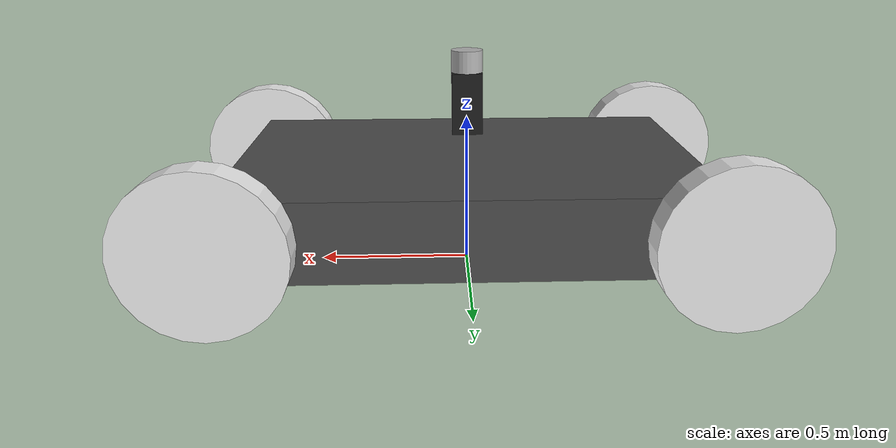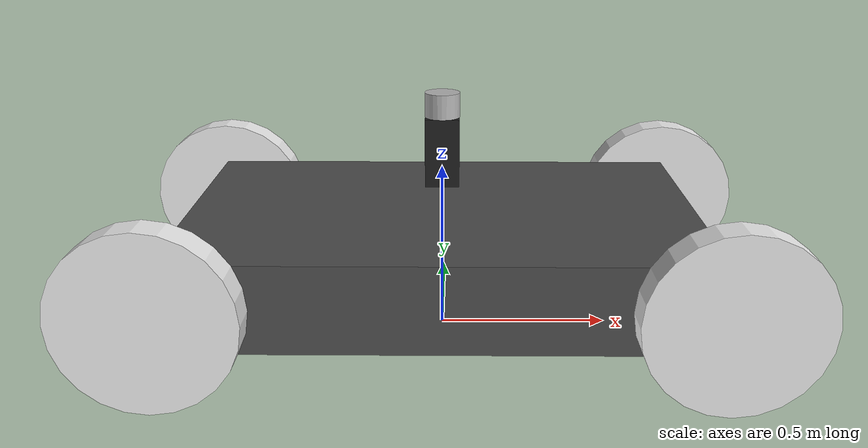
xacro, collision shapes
<?xml version='1.0'?>

<robot name="feldschwarm_robot" xmlns:xacro="http://www.ros.org/wiki/xacro">

  <xacro:include filename="$(find feldschwarm_robot_devel)/urdf/feldschwarm_robot.gazebo.xacro" />

  <xacro:property name="scale" value="1.0" />

  <xacro:property name="robot_width" value="${scale * 1}" />
  <xacro:property name="robot_length" value="${scale * 1.5}" />
  <xacro:property name="robot_height" value="${scale * 0.25}" />
  <xacro:property name="robot_mass" value="${scale * 20}" />

  <xacro:property name="base_x_offset" value="0" />

  <xacro:property name="height_2" value="${robot_height * robot_height}" />
  <xacro:property name="width_2" value="${robot_width * robot_width}" />
  <xacro:property name="length_2" value="${robot_length * robot_length}" />
  <xacro:property name="robot_inertia_xx" value="${robot_mass/12.0 * (height_2 + width_2)}" />
  <xacro:property name="robot_inertia_yy" value="${robot_mass/12.0 * (height_2 + length_2)}" />
  <xacro:property name="robot_inertia_zz" value="${robot_mass/12.0 * (width_2 + length_2)}" />
  <xacro:property name="robot_i_x_pos" value="${base_x_offset}" />

  <xacro:property name="robot_frame_width" value="${robot_width - 2.1 * wheel_length}" />
  <xacro:property name="robot_frame_length" value="${robot_length*1.2}" />
  <xacro:property name="robot_frame_height" value="${robot_height/4.0}" />

  <xacro:property name="wheel_length" value="${scale * 0.1}" />
  <xacro:property name="wheel_radius" value="${scale * 0.25}" />
  <xacro:property name="wheel_mass" value="${scale * 1}" />
  <xacro:property name="wheel_inertia" value="${scale * 1e-3}" />
  <xacro:property name="wheel_x_offset" value="0.75" />
  <xacro:property name="wheel_y_offset" value="0.55" />

  <xacro:property name="laser_width" value="0.1" />
  <xacro:property name="laser_length" value="0.1" />
  <xacro:property name="laser_height" value="0.1" />
  <xacro:property name="laser_x_offset" value="${base_x_offset}" />
  <xacro:property name="laser_z_offset" value="${hardware_height + 0.025}" />

  <xacro:property name="wheel_kp" value="1000000.0" />
  <xacro:property name="wheel_kd" value="100.0" />
  <xacro:property name="wheel_mu1" value="0.8" />
  <xacro:property name="wheel_mu2" value="0.8" />
  <xacro:property name="wheel_slip1" value="0.5" />
  <xacro:property name="wheel_slip2" value="0" />

  <link name="robot_footprint"></link>

  <joint name="robot_footprint_joint" type="fixed">
    <origin xyz="0 0 ${wheel_radius}" rpy="0 0 0" />
    <parent link="robot_footprint" />
    <child link="chassis" />
  </joint>

  <link name='chassis'>
    <inertial>
      <mass value="${robot_mass}"/>
      <origin xyz="${robot_i_x_pos} 0 ${robot_i_x_pos}" rpy=" 0 0 0"/>
      <inertia
          ixx="${robot_inertia_xx}" ixy="0" ixz="0"
          iyy="${robot_inertia_yy}" iyz="0"
          izz="${robot_inertia_zz}" />
    </inertial>

    <collision>
      <origin xyz="${base_x_offset} 0 0" rpy=" 0 0 0"/>
      <geometry>
        <box size="${robot_length} ${robot_width} ${robot_height}"/>
      </geometry>
    </collision>
    <visual>
      <origin xyz="${base_x_offset} 0 0" rpy=" 0 0 0"/>
      <geometry>
        <box size="${robot_length} ${robot_width} ${robot_height}"/>
      </geometry>
    </visual>
  </link>

  <!-- left back wheel -->
  <joint type="continuous" name="left_back_wheel_hinge">
    <origin xyz="-${wheel_x_offset} ${wheel_y_offset} 0" rpy="0 0 0"/>
    <child link="left_back_wheel"/>
    <parent link="chassis"/>
    <axis xyz="0 1 0" rpy="0 0 0"/>
    <limit effort="10000" velocity="1000"/>
    <joint_properties damping="1.0" friction="1.0"/>
  </joint>

  <link name="left_back_wheel">
    <inertial>
      <mass value="${wheel_mass}"/>
      <origin xyz="0.0 0 0" rpy=" 0 1.5707 1.5707"/>
      <inertia
        ixx="${wheel_inertia}" ixy="0" ixz="0"
        iyy="${wheel_inertia}" iyz="0"
        izz="${wheel_inertia}" />
    </inertial>
    <collision name="left_back_wheel_collision">
      <origin xyz="0 0 0" rpy=" 0 1.5707 1.5707"/>
      <geometry>
        <cylinder length="${wheel_length}" radius="${wheel_radius}"/>
      </geometry>
      <surface>
        <friction>
          <fdir1>1 0 0</fdir1>
          <kp>${wheel_kp}</kp>
          <kd>${wheel_kd}</kd>
          <mu>${wheel_mu1}</mu>
          <mu2>${wheel_mu2}</mu2>
          <slip1>${wheel_slip1}</slip1>
          <slip2>${wheel_slip2}</slip2>
        </friction>
      </surface>
    </collision>
    <visual name="left_back_wheel_visual">
      <origin xyz="0 0 0" rpy=" 0 1.5707 1.5707"/>
      <geometry>
        <cylinder length="${wheel_length}" radius="${wheel_radius}"/>
      </geometry>
    </visual>
  </link>

  <!-- right back wheel -->
  <joint type="continuous" name="right_back_wheel_hinge">
    <origin xyz="-${wheel_x_offset} -${wheel_y_offset} 0" rpy="0 0 0"/>
    <child link="right_back_wheel"/>
    <parent link="chassis"/>
    <axis xyz="0 1 0" rpy="0 0 0"/>
    <limit effort="10000" velocity="1000"/>
    <joint_properties damping="1.0" friction="1.0"/>
  </joint>

  <link name="right_back_wheel">
    <inertial>
      <mass value="${wheel_mass}"/>
      <origin xyz="0.0 0 0" rpy=" 0 1.5707 1.5707"/>
      <inertia
          ixx="${wheel_inertia}" ixy="0" ixz="0"
          iyy="${wheel_inertia}" iyz="0"
          izz="${wheel_inertia}" />
    </inertial>
    <collision name="right_back_wheel_collision">
      <origin xyz="0 0 0" rpy=" 0 1.5707 1.5707"/>
      <geometry>
        <cylinder length="${wheel_length}" radius="${wheel_radius}"/>
      </geometry>
      <surface>
        <friction>
          <fdir1>1 0 0</fdir1>
          <kp>${wheel_kp}</kp>
          <kd>${wheel_kd}</kd>
          <mu>${wheel_mu1}</mu>
          <mu2>${wheel_mu2}</mu2>
          <slip1>${wheel_slip1}</slip1>
          <slip2>${wheel_slip2}</slip2>
        </friction>
      </surface>
    </collision>
    <visual name="right_back_wheel_visual">
      <origin xyz="0 0 0" rpy=" 0 1.5707 1.5707"/>
      <geometry>
        <cylinder length="${wheel_length}" radius="${wheel_radius}"/>
      </geometry>
    </visual>
  </link>

  <joint type="continuous" name="left_front_wheel_hinge">
    <origin xyz="${wheel_x_offset} ${wheel_y_offset} 0" rpy="0 0 0"/>
    <child link="left_front_wheel"/>
    <parent link="chassis"/>
    <axis xyz="0 1 0" rpy="0 0 0"/>
    <limit effort="10000" velocity="1000"/>
    <joint_properties damping="1.0" friction="1.0"/>
  </joint>

  <link name="left_front_wheel">
    <inertial>
      <mass value="${wheel_mass}"/>
      <origin xyz="0.0 0 0" rpy=" 0 1.5707 1.5707"/>
      <inertia
        ixx="${wheel_inertia}" ixy="0" ixz="0"
        iyy="${wheel_inertia}" iyz="0"
        izz="${wheel_inertia}" />
    </inertial>
    <collision name="left_front_wheel_collision">
      <origin xyz="0 0 0" rpy=" 0 1.5707 1.5707"/>
      <geometry>
        <cylinder length="${wheel_length}" radius="${wheel_radius}"/>
      </geometry>
      <surface>
        <friction>
          <fdir1>1 0 0</fdir1>
          <kp>${wheel_kp}</kp>
          <kd>${wheel_kd}</kd>
          <mu>${wheel_mu1}</mu>
          <mu2>${wheel_mu2}</mu2>
          <slip1>${wheel_slip1}</slip1>
          <slip2>${wheel_slip2}</slip2>
        </friction>
      </surface>
    </collision>
    <visual name="left_front_wheel_visual">
      <origin xyz="0 0 0" rpy=" 0 1.5707 1.5707"/>
      <geometry>
        <cylinder length="${wheel_length}" radius="${wheel_radius}"/>
      </geometry>
    </visual>
  </link>

  <!-- right front wheel -->
  <joint type="continuous" name="right_front_wheel_hinge">
    <origin xyz="${wheel_x_offset} -${wheel_y_offset} 0" rpy="0 0 0"/>
    <child link="right_front_wheel"/>
    <parent link="chassis"/>
    <axis xyz="0 1 0" rpy="0 0 0"/>
    <limit effort="10000" velocity="1000"/>
    <joint_properties damping="1.0" friction="1.0"/>
  </joint>

  <link name="right_front_wheel">
    <inertial>
      <mass value="${wheel_mass}"/>
      <origin xyz="0.0 0 0" rpy=" 0 1.5707 1.5707"/>
      <inertia
          ixx="${wheel_inertia}" ixy="0" ixz="0"
          iyy="${wheel_inertia}" iyz="0"
          izz="${wheel_inertia}" />
    </inertial>
    <collision name="right_front_wheel_collision">
      <origin xyz="0 0 0" rpy=" 0 1.5707 1.5707"/>
      <geometry>
        <cylinder length="${wheel_length}" radius="${wheel_radius}"/>
      </geometry>
      <surface>
        <friction>
          <fdir1>1 0 0</fdir1>
          <kp>${wheel_kp}</kp>
          <kd>${wheel_kd}</kd>
          <mu>${wheel_mu1}</mu>
          <mu2>${wheel_mu2}</mu2>
          <slip1>${wheel_slip1}</slip1>
          <slip2>${wheel_slip2}</slip2>
        </friction>
      </surface>
    </collision>
    <visual name="right_front_wheel_visual">
      <origin xyz="0 0 0" rpy=" 0 1.5707 1.5707"/>
      <geometry>
        <cylinder length="${wheel_length}" radius="${wheel_radius}"/>
      </geometry>
    </visual>
  </link>
  <link name="lidar_stand">
    <visual>
      <geometry>
        <box size="0.1 0.1 0.2" />
      </geometry>
        <!--material name="black" /-->
    </visual>
    <collision>
      <geometry>
        <box size="0.1 0.1 0.2" />
      </geometry>
    </collision>
    <inertial>
      <mass value="1" />
      <inertia ixx="0.145833" ixy="0.0" ixz="0.145833" iyy="0.0" iyz="0.0" izz="0.1250"/>
    </inertial>
  </link>
  <joint name="joint_name" type="fixed">
      <parent link="chassis"/>
      <child link="lidar_stand"/>
      <axis xyz="0.0 0.0 1.0"/>
      <origin xyz="0.0 0.0 0.3"/>
      <!--limit lower="0.0" upper="0.0" effort="0.0" velocity="0.0"/-->
      <joint_properties damping="1.0" friction="1.0"/>
  </joint>

  <xacro:include filename="$(find velodyne_description)/urdf/VLP-16.urdf.xacro"/>
  <VLP-16 parent="chassis" name="velodyne" topic="/velodyne_points" hz="10" samples="1024" gpu="true" lasers="16" max_range="100">
    <origin xyz="0 0 0.4" rpy="0 0 0 " />
  </VLP-16>

</robot>

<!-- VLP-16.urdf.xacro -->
<robot xmlns:xacro="http://www.ros.org/wiki/xacro" name="VLP-16">
  <xacro:property name="M_PI" value="3.1415926535897931" />
  <xacro:macro name="VLP-16" params="*origin is_sim:=true parent:=base_link name:=velodyne tf_prefix:='' topic:=/velodyne_points organize_cloud:=false hz:=10 lasers:=16 samples:=1875 collision_range:=0.3 min_range:=0.0 max_range:=100.0 noise:=0.008 min_angle:=-${M_PI} max_angle:=${M_PI} gpu:=false">

    <joint name="${name}_base_mount_joint" type="fixed">
      <xacro:insert_block name="origin" />
      <parent link="${parent}"/>
      <child link="${name}_base_link"/>
    </joint>

    <link name="${name}_base_link">
      <inertial>
        <mass value="0.83"/>
        <origin xyz="0 0 0.03585"/>
        <inertia ixx="${(0.83 * (3.0*0.0516*0.0516 + 0.0717*0.0717)) / 12.0}" ixy="0" ixz="0"
          iyy="${(0.83 * (3.0*0.0516*0.0516 + 0.0717*0.0717)) / 12.0}" iyz="0"
          izz="${0.5 * 0.83 * (0.0516*0.0516)}"/>
      </inertial>
      <visual>
        <geometry>
          <mesh filename="package://velodyne_description/meshes/VLP16_base_1.dae" />
        </geometry>
      </visual>
      <visual>
        <geometry>
          <mesh filename="package://velodyne_description/meshes/VLP16_base_2.dae" />
        </geometry>
      </visual>
      <collision>
        <origin rpy="0 0 0" xyz="0 0 0.03585"/>
        <geometry>
          <cylinder radius="0.0516" length="0.0717"/>
        </geometry>
      </collision>
    </link>

    <joint name="${name}_base_scan_joint" type="fixed" >
      <origin xyz="0 0 0.0377" rpy="0 0 0" />
      <parent link="${name}_base_link" />
      <child link="${name}"/>
    </joint>

    <link name="${name}">
      <inertial>
        <mass value="0.01"/>
        <origin xyz="0 0 0"/>
        <inertia ixx="1e-7" ixy="0" ixz="0" iyy="1e-7" iyz="0" izz="1e-7"/>
      </inertial>
      <visual>
        <origin xyz="0 0 -0.0377" />
        <geometry>
          <mesh filename="package://velodyne_description/meshes/VLP16_scan.dae" />
        </geometry>
      </visual>
      <collision>
        <geometry>
          <sphere radius="0"/>
        </geometry>
      </collision>
    </link>

    <!-- Gazebo requires the velodyne_gazebo_plugins package -->
    <xacro:if value="${is_sim}">
        <gazebo reference="${name}">
            <xacro:if value="${gpu}">
                <sensor type="gpu_ray" name="${name}-VLP16">
                <pose>0 0 0 0 0 0</pose>
                <visualize>false</visualize>
                <update_rate>${hz}</update_rate>
                <ray>
                    <scan>
                    <horizontal>
                        <samples>${samples}</samples>
                        <resolution>1</resolution>
                        <min_angle>${min_angle}</min_angle>
                        <max_angle>${max_angle}</max_angle>
                    </horizontal>
                    <vertical>
                        <samples>${lasers}</samples>
                        <resolution>1</resolution>
                        <min_angle>-${15.0*M_PI/180.0}</min_angle>
                        <max_angle> ${15.0*M_PI/180.0}</max_angle>
                    </vertical>
                    </scan>
                    <range>
                    <min>${collision_range}</min>
                    <max>${max_range+1}</max>
                    <resolution>0.001</resolution>
                    </range>
                    <noise>
                    <type>gaussian</type>
                    <mean>0.0</mean>
                    <stddev>0.0</stddev>
                    </noise>
                </ray>
                <plugin name="gazebo_ros_laser_controller" filename="libgazebo_ros_velodyne_laser.so">
                    <ros>
                    <namespace>/${name}</namespace>
                    <remapping>~/out:=${topic}</remapping>
                    </ros>
                    <tf_prefix>${tf_prefix}</tf_prefix>
                    <frame_name>${name}</frame_name>
                    <organize_cloud>${organize_cloud}</organize_cloud>
                    <min_range>${min_range}</min_range>
                    <max_range>${max_range}</max_range>
                    <gaussian_noise>${noise}</gaussian_noise>
                </plugin>
                </sensor>
            </xacro:if>
            <xacro:unless value="${gpu}">
                <sensor type="ray" name="${name}-VLP16">
                <pose>0 0 0 0 0 0</pose>
                <visualize>false</visualize>
                <update_rate>${hz}</update_rate>
                <ray>
                    <scan>
                    <horizontal>
                        <samples>${samples}</samples>
                        <resolution>1</resolution>
                        <min_angle>${min_angle}</min_angle>
                        <max_angle>${max_angle}</max_angle>
                    </horizontal>
                    <vertical>
                        <samples>${lasers}</samples>
                        <resolution>1</resolution>
                        <min_angle>-${15.0*M_PI/180.0}</min_angle>
                        <max_angle> ${15.0*M_PI/180.0}</max_angle>
                    </vertical>
                    </scan>
                    <range>
                    <min>${collision_range}</min>
                    <max>${max_range+1}</max>
                    <resolution>0.001</resolution>
                    </range>
                    <noise>
                    <type>gaussian</type>
                    <mean>0.0</mean>
                    <stddev>0.0</stddev>
                    </noise>
                </ray>
                <plugin name="gazebo_ros_laser_controller" filename="libgazebo_ros_velodyne_laser.so">
                    <ros>
                    <namespace>/${name}</namespace>
                    <remapping>~/out:=${topic}</remapping>
                    </ros>
                    <tf_prefix>${tf_prefix}</tf_prefix>
                    <frame_name>${name}</frame_name>
                    <organize_cloud>${organize_cloud}</organize_cloud>
                    <min_range>${min_range}</min_range>
                    <max_range>${max_range}</max_range>
                    <gaussian_noise>${noise}</gaussian_noise>
                </plugin>
                </sensor>
            </xacro:unless>
        </gazebo>
    </xacro:if>

  </xacro:macro>
</robot>
